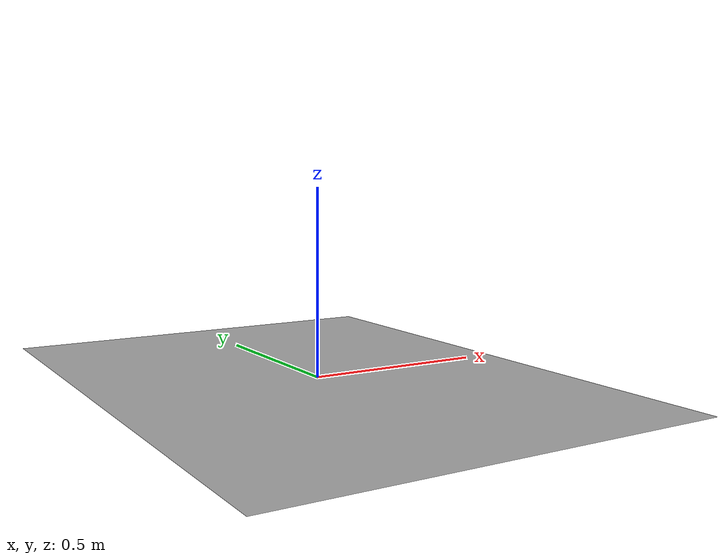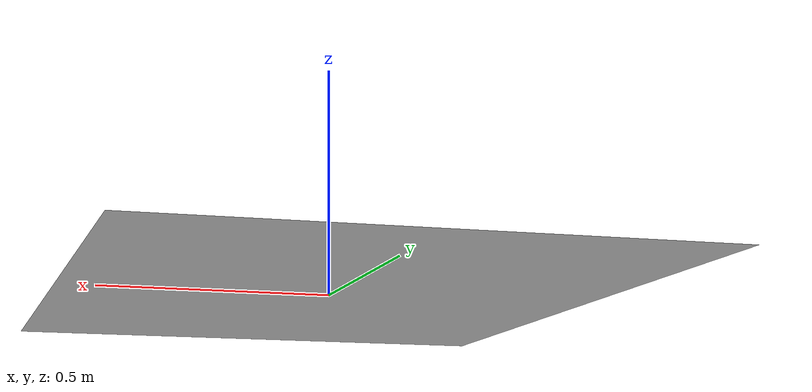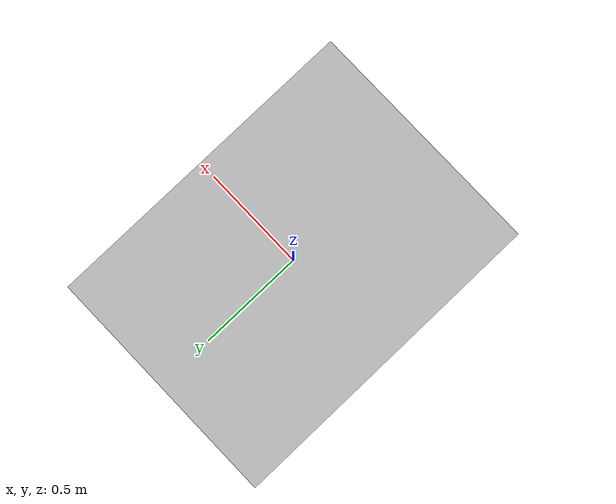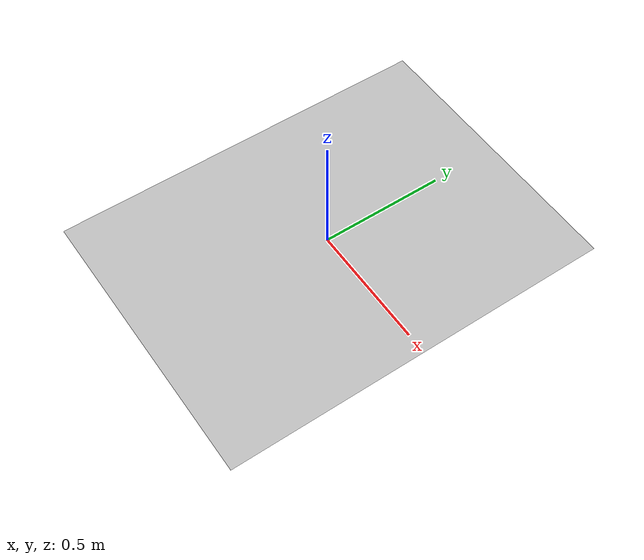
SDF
<?xml version='1.0'?>
<sdf version="1.6">
    <model name="calibration_plane1">
        <static>true</static>
        <link name="link">
            <visual name="visual">
                <geometry>
                    <mesh>
                        <uri>model://calibration_plane1/meshes/calibration_plane.dae</uri>
                    </mesh>
                </geometry>
            </visual>
        </link>
    </model>
</sdf>
